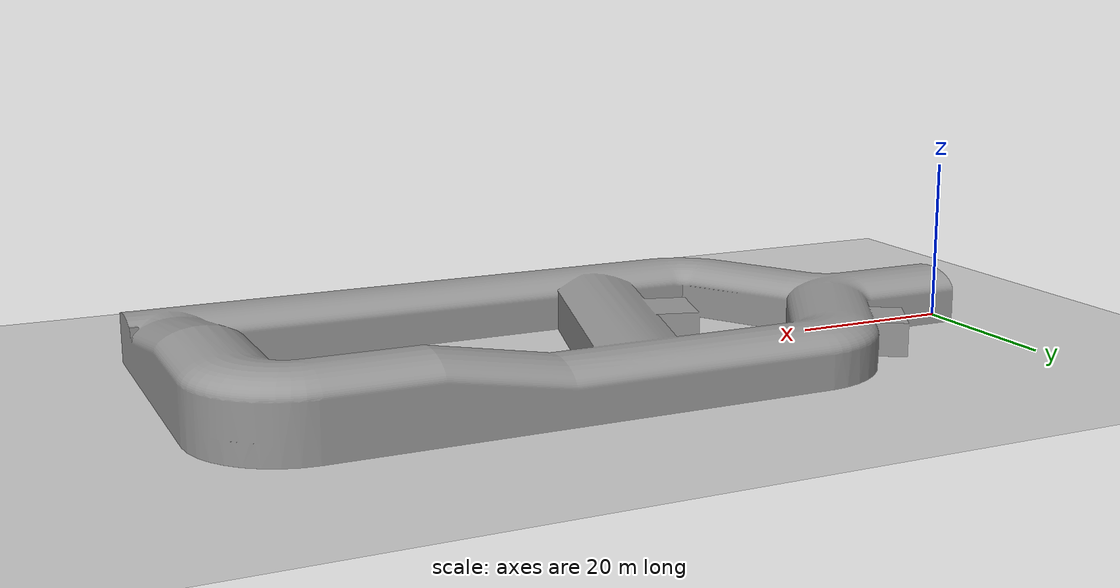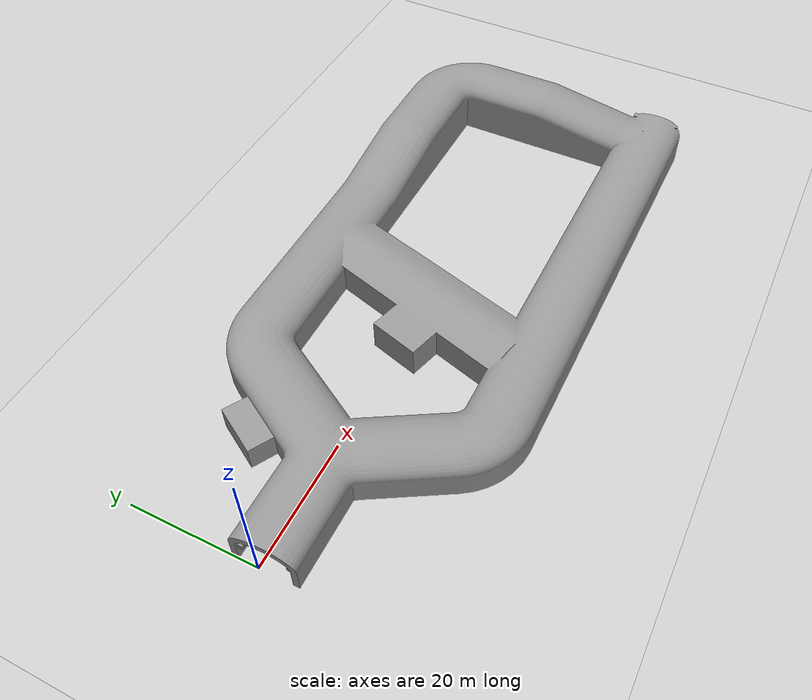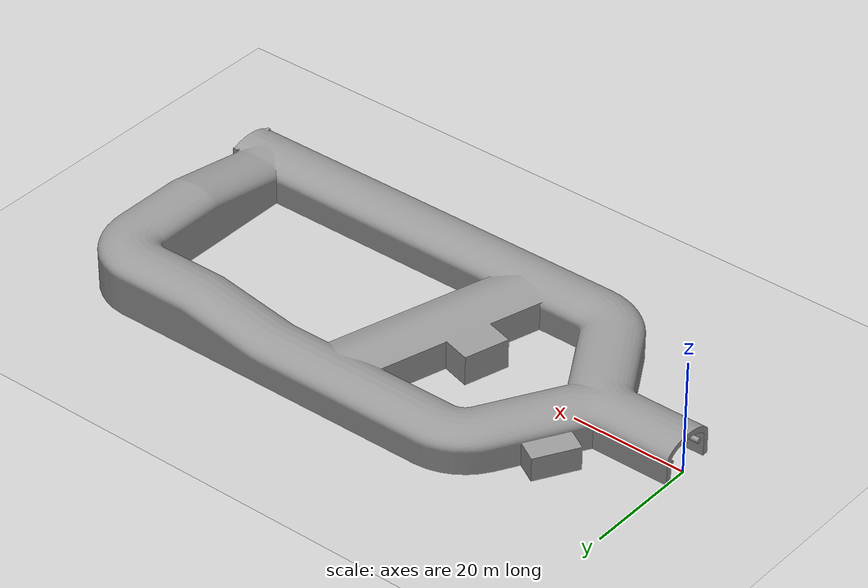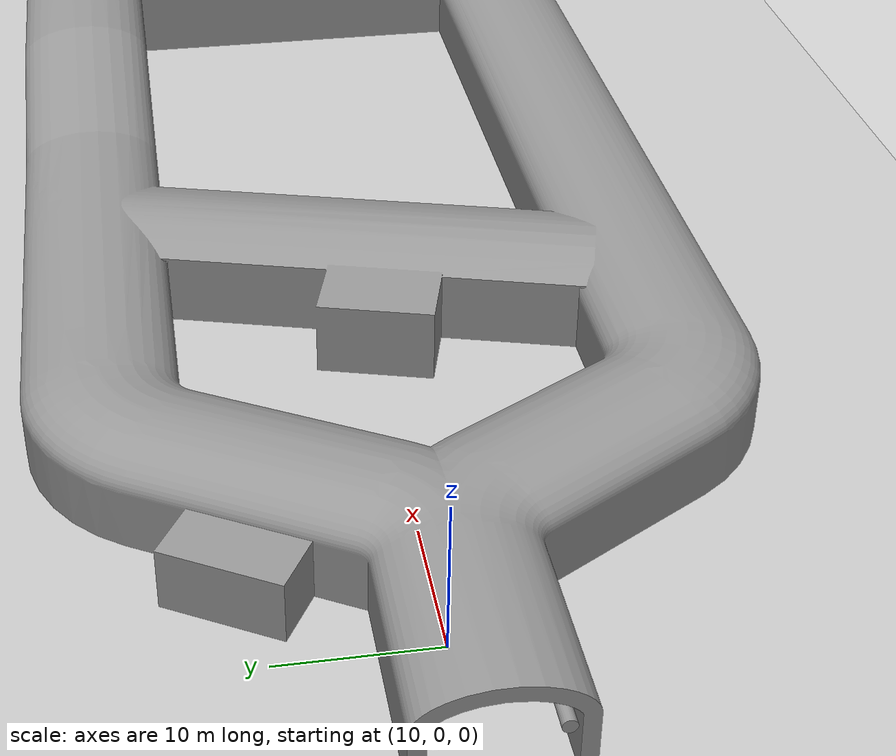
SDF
<sdf version="1.6">
 <world name="default">
  <light name="sun" type="directional">
   <pose>0 0 10 0 -0 0</pose>
   <diffuse>0.8 0.8 0.8 1</diffuse>
   <specular>0.2 0.2 0.2 1</specular>
   <attenuation>
    <range>1000</range>
    <constant>0.9</constant>
    <linear>0.01</linear>
    <quadratic>0.001</quadratic>
   </attenuation>
   <direction>-0.5 0.1 -0.9</direction>
  </light>
  <model name="ground_plane">
   <static>1</static>
   <link name="link">
    <collision name="collision">
     <geometry><plane><normal>0 0 1</normal><size>100 100</size></plane></geometry>
     <surface><friction><ode><mu>100</mu><mu2>50</mu2></ode></friction></surface>
    </collision>
    <visual name="visual">
     <cast_shadows>0</cast_shadows>
     <geometry><plane><normal>0 0 1</normal><size>100 100</size></plane></geometry>
    </visual>
   </link>
  </model>
  <gravity>0 0 -9.8</gravity>
  <magnetic_field>6e-06 2.3e-05 -4.2e-05</magnetic_field>
  <atmosphere type="adiabatic"/>
  <physics name="default_physics" default="0" type="ode">
   <max_step_size>0.001</max_step_size>
   <real_time_factor>1</real_time_factor>
   <real_time_update_rate>1000</real_time_update_rate>
  </physics>
  <scene><ambient>0.4 0.4 0.4 1</ambient><background>0.7 0.7 0.7 1</background><shadows>1</shadows></scene>
  <audio><device>default</device></audio>
  <spherical_coordinates>
   <surface_model>EARTH_WGS84</surface_model>
   <latitude_deg>0</latitude_deg>
   <longitude_deg>0</longitude_deg>
   <elevation>0</elevation>
   <heading_deg>0</heading_deg>
  </spherical_coordinates>
  <model name="hangdao">
   <link name="hangdao::link_0">
    <inertial>
     <mass>1e-08</mass>
     <inertia>
      <ixx>0.166667</ixx>
      <ixy>0</ixy>
      <ixz>0</ixz>
      <iyy>0.166667</iyy>
      <iyz>0</iyz>
      <izz>0.166667</izz>
     </inertia>
    </inertial>
    <pose>-2e-05 3e-06 0 0 -0 0</pose>
    <visual name="visual">
     <geometry>
      <mesh><uri>/home/xu/A_husky/src/husky/husky_gazebo/worlds/hangdao/hangdao.dae</uri><scale>1 1 1</scale></mesh>
     </geometry>
     <material>
      <lighting>1</lighting>
      <script><uri>file://media/materials/scripts/gazebo.material</uri><name>Gazebo/Grey</name></script>
     </material>
    </visual>
    <collision name="collision">
     <geometry>
      <mesh><uri>/home/xu/A_husky/src/husky/husky_gazebo/worlds/hangdao/hangdao.dae</uri><scale>1 1 1</scale></mesh>
     </geometry>
     <surface>
      <friction>
       <ode><mu>1</mu><mu2>1</mu2><fdir1>0 0 0</fdir1><slip1>0</slip1><slip2>0</slip2></ode>
       <torsional>
        <coefficient>1</coefficient>
        <patch_radius>0</patch_radius>
        <surface_radius>0</surface_radius>
        <use_patch_radius>1</use_patch_radius>
        <ode><slip>0</slip></ode>
       </torsional>
      </friction>
      <bounce><restitution_coefficient>0</restitution_coefficient><threshold>1e+06</threshold></bounce>
      <contact>
       <collide_without_contact>0</collide_without_contact>
       <collide_without_contact_bitmask>1</collide_without_contact_bitmask>
       <collide_bitmask>1</collide_bitmask>
       <ode>
        <soft_cfm>0</soft_cfm>
        <soft_erp>0.2</soft_erp>
        <kp>1e+13</kp>
        <kd>1</kd>
        <max_vel>0.01</max_vel>
        <min_depth>0</min_depth>
       </ode>
       <bullet>
        <split_impulse>1</split_impulse>
        <split_impulse_penetration_threshold>-0.01</split_impulse_penetration_threshold>
        <soft_cfm>0</soft_cfm>
        <soft_erp>0.2</soft_erp>
        <kp>1e+13</kp>
        <kd>1</kd>
       </bullet>
      </contact>
     </surface>
    </collision>
   </link>
   <static>1</static>
   <pose>0 24 0 0 0 -1.57</pose>
  </model>
  <light name="user_point_light_0" type="point">
   <pose>17.8312 -0.966396 1 0 -0 0</pose>
   <diffuse>0.5 0.5 0.5 1</diffuse>
   <specular>0.1 0.1 0.1 1</specular>
   <attenuation>
    <range>20</range>
    <constant>0.5</constant>
    <linear>0.01</linear>
    <quadratic>0.001</quadratic>
   </attenuation>
   <cast_shadows>0</cast_shadows>
   <direction>0 0 -1</direction>
  </light>
  <light name="user_point_light_1" type="point">
   <pose>6.00042 -0.731883 1 0 -0 0</pose>
   <diffuse>0.5 0.5 0.5 1</diffuse>
   <specular>0.1 0.1 0.1 1</specular>
   <attenuation>
    <range>20</range>
    <constant>0.5</constant>
    <linear>0.01</linear>
    <quadratic>0.001</quadratic>
   </attenuation>
   <cast_shadows>0</cast_shadows>
   <direction>0 0 -1</direction>
  </light>
  <light name="user_point_light_2" type="point">
   <pose>24.638 13.0518 1 0 -0 0</pose>
   <diffuse>0.5 0.5 0.5 1</diffuse>
   <specular>0.1 0.1 0.1 1</specular>
   <attenuation>
    <range>20</range>
    <constant>0.5</constant>
    <linear>0.01</linear>
    <quadratic>0.001</quadratic>
   </attenuation>
   <cast_shadows>0</cast_shadows>
   <direction>0 0 -1</direction>
  </light>
  <light name="user_point_light_3" type="point">
   <pose>26.0858 -16.8172 1 0 -0 0</pose>
   <diffuse>0.5 0.5 0.5 1</diffuse>
   <specular>0.1 0.1 0.1 1</specular>
   <attenuation>
    <range>20</range>
    <constant>0.5</constant>
    <linear>0.01</linear>
    <quadratic>0.001</quadratic>
   </attenuation>
   <cast_shadows>0</cast_shadows>
   <direction>0 0 -1</direction>
  </light>
  <light name="user_point_light_4" type="point">
   <pose>50.0139 18.1167 1 0 -0 0</pose>
   <diffuse>0.5 0.5 0.5 1</diffuse>
   <specular>0.1 0.1 0.1 1</specular>
   <attenuation>
    <range>20</range>
    <constant>0.5</constant>
    <linear>0.01</linear>
    <quadratic>0.001</quadratic>
   </attenuation>
   <cast_shadows>0</cast_shadows>
   <direction>0 0 -1</direction>
  </light>
  <light name="user_point_light_5" type="point">
   <pose>46.8086 -0.566852 1 0 -0 0</pose>
   <diffuse>0.5 0.5 0.5 1</diffuse>
   <specular>0.1 0.1 0.1 1</specular>
   <attenuation>
    <range>20</range>
    <constant>0.5</constant>
    <linear>0.01</linear>
    <quadratic>0.001</quadratic>
   </attenuation>
   <cast_shadows>0</cast_shadows>
   <direction>0 0 -1</direction>
  </light>
  <light name="user_point_light_6" type="point">
   <pose>41.9086 -18.8385 1 0 -0 0</pose>
   <diffuse>0.5 0.5 0.5 1</diffuse>
   <specular>0.1 0.1 0.1 1</specular>
   <attenuation>
    <range>20</range>
    <constant>0.5</constant>
    <linear>0.01</linear>
    <quadratic>0.001</quadratic>
   </attenuation>
   <cast_shadows>0</cast_shadows>
   <direction>0 0 -1</direction>
  </light>
  <light name="user_point_light_7" type="point">
   <pose>59.2735 -19.2199 1 0 -0 0</pose>
   <diffuse>0.5 0.5 0.5 1</diffuse>
   <specular>0.1 0.1 0.1 1</specular>
   <attenuation>
    <range>20</range>
    <constant>0.5</constant>
    <linear>0.01</linear>
    <quadratic>0.001</quadratic>
   </attenuation>
   <cast_shadows>0</cast_shadows>
   <direction>0 0 -1</direction>
  </light>
  <light name="user_point_light_8" type="point">
   <pose>75.0445 -19.2321 1 0 -0 0</pose>
   <diffuse>0.5 0.5 0.5 1</diffuse>
   <specular>0.1 0.1 0.1 1</specular>
   <attenuation>
    <range>20</range>
    <constant>0.5</constant>
    <linear>0.01</linear>
    <quadratic>0.001</quadratic>
   </attenuation>
   <cast_shadows>0</cast_shadows>
   <direction>0 0 -1</direction>
  </light>
  <light name="user_point_light_9" type="point">
   <pose>93.5256 -19.5946 1 0 -0 0</pose>
   <diffuse>0.5 0.5 0.5 1</diffuse>
   <specular>0.1 0.1 0.1 1</specular>
   <attenuation>
    <range>20</range>
    <constant>0.5</constant>
    <linear>0.01</linear>
    <quadratic>0.001</quadratic>
   </attenuation>
   <cast_shadows>0</cast_shadows>
   <direction>0 0 -1</direction>
  </light>
  <light name="user_point_light_10" type="point">
   <pose>67.0501 17.9549 1 0 -0 0</pose>
   <diffuse>0.5 0.5 0.5 1</diffuse>
   <specular>0.1 0.1 0.1 1</specular>
   <attenuation>
    <range>20</range>
    <constant>0.5</constant>
    <linear>0.01</linear>
    <quadratic>0.001</quadratic>
   </attenuation>
   <cast_shadows>0</cast_shadows>
   <direction>0 0 -1</direction>
  </light>
  <light name="user_point_light_11" type="point">
   <pose>88.6678 17.7042 1 0 -0 0</pose>
   <diffuse>0.5 0.5 0.5 1</diffuse>
   <specular>0.1 0.1 0.1 1</specular>
   <attenuation>
    <range>20</range>
    <constant>0.5</constant>
    <linear>0.01</linear>
    <quadratic>0.001</quadratic>
   </attenuation>
   <cast_shadows>0</cast_shadows>
   <direction>0 0 -1</direction>
  </light>
  <light name="user_point_light_12" type="point">
   <pose>96.2336 0.570116 1 0 -0 0</pose>
   <diffuse>0.5 0.5 0.5 1</diffuse>
   <specular>0.1 0.1 0.1 1</specular>
   <attenuation>
    <range>20</range>
    <constant>0.5</constant>
    <linear>0.01</linear>
    <quadratic>0.001</quadratic>
   </attenuation>
   <cast_shadows>0</cast_shadows>
   <direction>0 0 -1</direction>
  </light>
  <model name="unit_cylinder">
   <pose>6.09406 -4.52687 2.90896 1.74507 -1.4722 -1.74424</pose>
   <link name="unit_cylinder::unit_cylinder::link">
    <inertial>
     <mass>1</mass>
     <inertia><ixx>0.145833</ixx><ixy>0</ixy><ixz>0</ixz><iyy>0.145833</iyy><iyz>0</iyz><izz>0.125</izz></inertia>
    </inertial>
    <collision name="collision">
     <geometry><cylinder><radius>0.449035</radius><length>11.1097</length></cylinder></geometry>
    </collision>
    <visual name="visual">
     <geometry><cylinder><radius>0.449035</radius><length>11.1097</length></cylinder></geometry>
     <material>
      <script><name>Gazebo/Grey</name><uri>file://media/materials/scripts/gazebo.material</uri></script>
     </material>
    </visual>
   </link>
  </model>
  <model name="unit_cylinder_clone">
   <pose>5.86447 2.50925 3.12795 1.58504 0.408381 -1.56554</pose>
   <link name="unit_cylinder_clone::unit_cylinder_clone::unit_cylinder::link">
    <inertial>
     <mass>1</mass>
     <inertia><ixx>0.145833</ixx><ixy>0</ixy><ixz>0</ixz><iyy>0.145833</iyy><iyz>0</iyz><izz>0.125</izz></inertia>
    </inertial>
    <collision name="collision">
     <geometry><cylinder><radius>0.449034</radius><length>11.1097</length></cylinder></geometry>
    </collision>
    <visual name="visual">
     <geometry><cylinder><radius>0.449034</radius><length>11.1097</length></cylinder></geometry>
     <material>
      <script><name>Gazebo/Grey</name><uri>file://media/materials/scripts/gazebo.material</uri></script>
     </material>
    </visual>
   </link>
  </model>
  <model name="unit_cylinder_clone_clone">
   <pose>25.0799 7.1121 2.60994 1.62765 -1.31145 -0.56227</pose>
   <link name="unit_cylinder_clone_clone::unit_cylinder_clone_clone::unit_cylinder_clone::unit_cylinder::link">
    <inertial>
     <mass>1</mass>
     <inertia><ixx>0.145833</ixx><ixy>0</ixy><ixz>0</ixz><iyy>0.145833</iyy><iyz>0</iyz><izz>0.125</izz></inertia>
    </inertial>
    <collision name="collision">
     <geometry><cylinder><radius>0.449034</radius><length>18.0448</length></cylinder></geometry>
    </collision>
    <visual name="visual">
     <geometry><cylinder><radius>0.449034</radius><length>18.0448</length></cylinder></geometry>
     <material>
      <script><name>Gazebo/Grey</name><uri>file://media/materials/scripts/gazebo.material</uri></script>
     </material>
    </visual>
   </link>
  </model>
  <model name="unit_cylinder_clone_clone_clone">
   <pose>24.7568 -8.3484 2.52263 -1.60228 -1.33056 -2.59959</pose>
   <link name="unit_cylinder_clone_clone_clone::unit_cylinder_clone_clone_clone::unit_cylinder_clone_clone::unit_cylinder_clone::unit_cylinder::link">
    <inertial>
     <mass>1</mass>
     <inertia><ixx>0.145833</ixx><ixy>0</ixy><ixz>0</ixz><iyy>0.145833</iyy><iyz>0</iyz><izz>0.125</izz></inertia>
    </inertial>
    <collision name="collision">
     <geometry><cylinder><radius>0.449034</radius><length>14.6397</length></cylinder></geometry>
    </collision>
    <visual name="visual">
     <geometry><cylinder><radius>0.449034</radius><length>14.6397</length></cylinder></geometry>
     <material>
      <script><name>Gazebo/Grey</name><uri>file://media/materials/scripts/gazebo.material</uri></script>
     </material>
    </visual>
   </link>
  </model>
  <model name="unit_box">
   <pose>40.9262 -8.87676 0.499993 1.4e-05 1e-06 -0.089949</pose>
   <link name="link">
    <inertial>
     <mass>1</mass>
     <inertia>
      <ixx>0.166667</ixx>
      <ixy>0</ixy>
      <ixz>0</ixz>
      <iyy>0.166667</iyy>
      <iyz>0</iyz>
      <izz>0.166667</izz>
     </inertia>
    </inertial>
    <collision name="collision"><geometry><box><size>1 1 1</size></box></geometry></collision>
    <visual name="visual">
     <geometry><box><size>1 1 1</size></box></geometry>
     <material>
      <script><name>Gazebo/Grey</name><uri>file://media/materials/scripts/gazebo.material</uri></script>
     </material>
    </visual>
   </link>
  </model>
  <model name="unit_box_0">
   <pose>41.0771 -9.17881 1.49999 0 -1.6e-05 0.007823</pose>
   <link name="link">
    <inertial>
     <mass>1</mass>
     <inertia>
      <ixx>0.166667</ixx>
      <ixy>0</ixy>
      <ixz>0</ixz>
      <iyy>0.166667</iyy>
      <iyz>0</iyz>
      <izz>0.166667</izz>
     </inertia>
    </inertial>
    <collision name="collision"><geometry><box><size>1 1 1</size></box></geometry></collision>
    <visual name="visual">
     <geometry><box><size>1 1 1</size></box></geometry>
     <material>
      <script><name>Gazebo/Grey</name><uri>file://media/materials/scripts/gazebo.material</uri></script>
     </material>
    </visual>
   </link>
  </model>
  <model name="unit_box_1">
   <pose>42.1471 -8.84477 0.5 0 -0 0.763338</pose>
   <link name="link">
    <inertial>
     <mass>1</mass>
     <inertia>
      <ixx>0.166667</ixx>
      <ixy>0</ixy>
      <ixz>0</ixz>
      <iyy>0.166667</iyy>
      <iyz>0</iyz>
      <izz>0.166667</izz>
     </inertia>
    </inertial>
    <collision name="collision"><geometry><box><size>1 1 1</size></box></geometry></collision>
    <visual name="visual">
     <geometry><box><size>1 1 1</size></box></geometry>
     <material>
      <script><name>Gazebo/Grey</name><uri>file://media/materials/scripts/gazebo.material</uri></script>
     </material>
    </visual>
   </link>
  </model>
  <model name="unit_box_2">
   <pose>51.5997 3.94893 0.5 0 -0 0.014019</pose>
   <link name="link">
    <inertial>
     <mass>1</mass>
     <inertia>
      <ixx>0.166667</ixx>
      <ixy>0</ixy>
      <ixz>0</ixz>
      <iyy>0.166667</iyy>
      <iyz>0</iyz>
      <izz>0.166667</izz>
     </inertia>
    </inertial>
    <collision name="collision"><geometry><box><size>1 1 1</size></box></geometry></collision>
    <visual name="visual">
     <geometry><box><size>1 1 1</size></box></geometry>
     <material>
      <script><name>Gazebo/Grey</name><uri>file://media/materials/scripts/gazebo.material</uri></script>
     </material>
    </visual>
   </link>
  </model>
  <model name="unit_box_3">
   <pose>51.5763 6.12482 0.5 0 -0 0.654505</pose>
   <link name="link">
    <inertial>
     <mass>1</mass>
     <inertia>
      <ixx>0.166667</ixx>
      <ixy>0</ixy>
      <ixz>0</ixz>
      <iyy>0.166667</iyy>
      <iyz>0</iyz>
      <izz>0.166667</izz>
     </inertia>
    </inertial>
    <collision name="collision"><geometry><box><size>1 1 1</size></box></geometry></collision>
    <visual name="visual">
     <geometry><box><size>1 1 1</size></box></geometry>
     <material>
      <script><name>Gazebo/Grey</name><uri>file://media/materials/scripts/gazebo.material</uri></script>
     </material>
    </visual>
   </link>
  </model>
  <model name="unit_box_4">
   <pose>50.3767 3.6479 0.5 -3.11239 -1.57079 -3.14159</pose>
   <link name="link">
    <inertial>
     <mass>1</mass>
     <inertia>
      <ixx>0.166667</ixx>
      <ixy>0</ixy>
      <ixz>0</ixz>
      <iyy>0.166667</iyy>
      <iyz>0</iyz>
      <izz>0.166667</izz>
     </inertia>
    </inertial>
    <collision name="collision"><geometry><box><size>1 1 1</size></box></geometry></collision>
    <visual name="visual">
     <geometry><box><size>1 1 1</size></box></geometry>
     <material>
      <script><name>Gazebo/Grey</name><uri>file://media/materials/scripts/gazebo.material</uri></script>
     </material>
    </visual>
   </link>
  </model>
  <model name="unit_cylinder_0">
   <pose>49.3131 -3.96263 3.02318 1.5708 -0 -0.248081</pose>
   <link name="unit_cylinder_0::link">
    <inertial>
     <mass>1</mass>
     <inertia><ixx>0.145833</ixx><ixy>0</ixy><ixz>0</ixz><iyy>0.145833</iyy><iyz>0</iyz><izz>0.125</izz></inertia>
    </inertial>
    <collision name="collision">
     <geometry><cylinder><radius>0.401068</radius><length>17.7979</length></cylinder></geometry>
    </collision>
    <visual name="visual">
     <geometry><cylinder><radius>0.401068</radius><length>17.7979</length></cylinder></geometry>
     <material>
      <script><name>Gazebo/Grey</name><uri>file://media/materials/scripts/gazebo.material</uri></script>
     </material>
    </visual>
   </link>
  </model>
  <model name="unit_cylinder_1">
   <pose>62.98 -22.6085 3.93769 3.14159 -1.57079 3.14159</pose>
   <link name="link">
    <inertial>
     <mass>1</mass>
     <inertia><ixx>0.145833</ixx><ixy>0</ixy><ixz>0</ixz><iyy>0.145833</iyy><iyz>0</iyz><izz>0.125</izz></inertia>
    </inertial>
    <collision name="collision">
     <geometry><cylinder><radius>0.5</radius><length>70.7768</length></cylinder></geometry>
    </collision>
    <visual name="visual">
     <geometry><cylinder><radius>0.5</radius><length>70.7768</length></cylinder></geometry>
     <material>
      <script><name>Gazebo/Grey</name><uri>file://media/materials/scripts/gazebo.material</uri></script>
     </material>
    </visual>
   </link>
  </model>
 </world>
</sdf>
